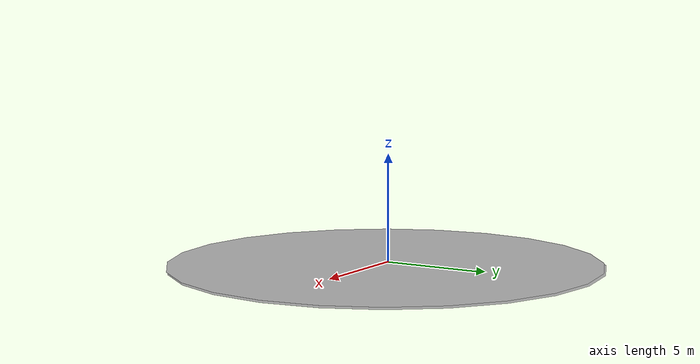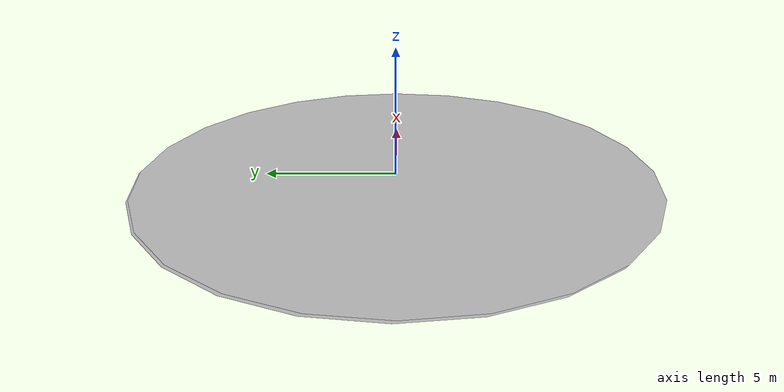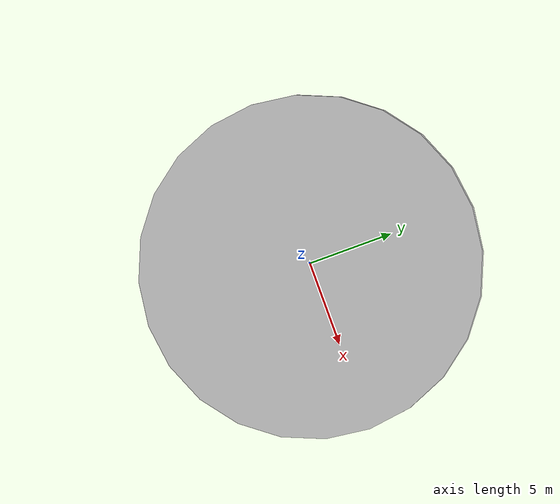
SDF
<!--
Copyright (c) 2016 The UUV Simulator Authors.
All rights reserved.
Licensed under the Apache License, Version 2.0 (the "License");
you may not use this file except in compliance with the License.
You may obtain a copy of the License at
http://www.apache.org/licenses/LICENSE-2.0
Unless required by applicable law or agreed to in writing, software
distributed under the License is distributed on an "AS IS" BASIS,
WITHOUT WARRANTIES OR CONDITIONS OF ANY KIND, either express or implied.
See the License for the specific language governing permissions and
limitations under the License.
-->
<?xml version="1.0" ?>
<sdf version="1.5">
  <model name="Helideck">
    <static>true</static>
    <link name="link">
    <collision name="helideck">
	<cast_shadows>true</cast_shadows>
        <pose>0 0 0 3.14 0 0</pose>
        <geometry>
          <mesh><uri>model://helideck/meshes/helideckdae.dae</uri></mesh>
        </geometry>
      </collision>
      <visual name="helideck">
        <cast_shadows>true</cast_shadows>
        <pose>0 0 0 3.14 0 0</pose>
        <geometry>
          <mesh><uri>model://helideck/meshes/helideckdae.dae</uri></mesh>
        </geometry>
      </visual>
	<visual name="helideck2">
        <cast_shadows>true</cast_shadows>
        <pose>0 0 -0.1 0 0 0</pose>
        <geometry>
          <mesh><uri>model://helideck/meshes/helideckdae.dae</uri></mesh>
        </geometry>
      </visual>
    </link>
  </model>
</sdf>
